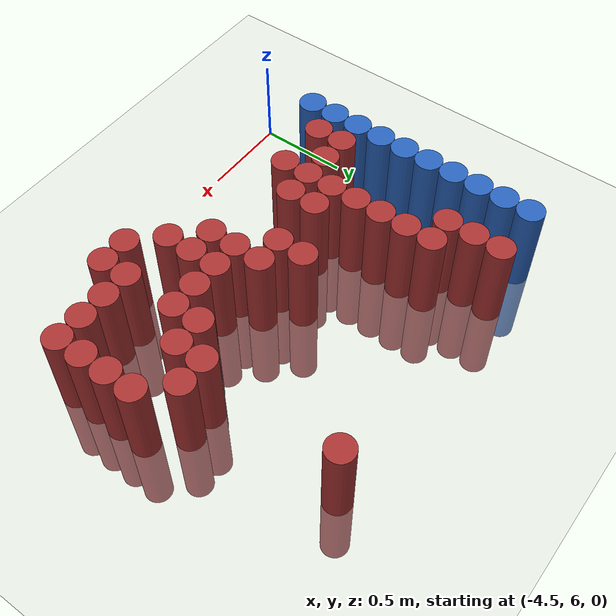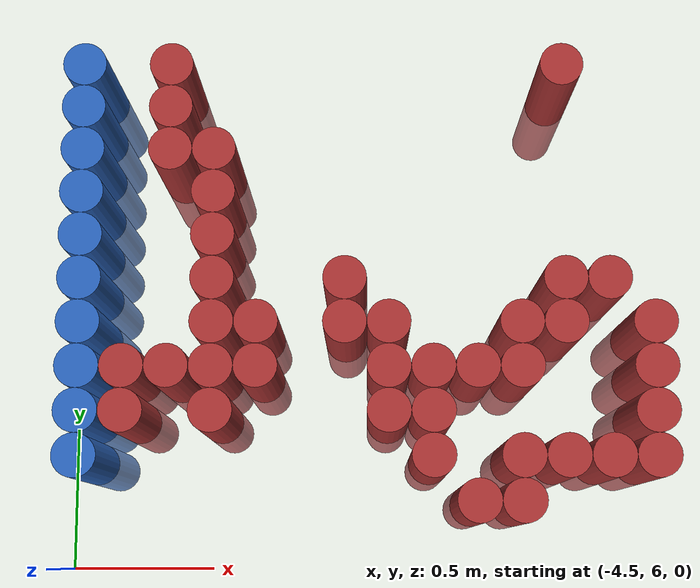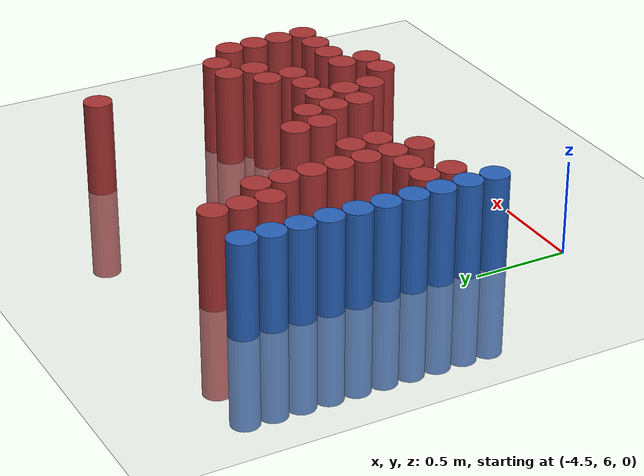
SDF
<sdf version="1.6">
 <world name="default">
  <model name="ground_plane">
   <static>1</static>
   <link name="link">
    <collision name="collision">
     <geometry><plane><normal>0 0 1</normal><size>100 100</size></plane></geometry>
     <surface><friction><ode><mu>100</mu><mu2>50</mu2></ode></friction></surface>
    </collision>
    <visual name="visual">
     <cast_shadows>0</cast_shadows>
     <geometry><plane><normal>0 0 1</normal><size>100 100</size></plane></geometry>
     <material>
      <script><uri>file://media/materials/scripts/gazebo.material</uri><name>Gazebo/Grey</name></script>
     </material>
    </visual>
   </link>
  </model>
  <model name="unit_cylinder_104">
   <static>1</static>
   <pose>-4.425000 6.375000 0.000000 0.000000 0.000000 0.000000</pose>
   <link name="link">
    <inertial>
     <mass>1</mass>
     <inertia><ixx>0.145833</ixx><ixy>0</ixy><ixz>0</ixz><iyy>0.145833</iyy><iyz>0</iyz><izz>0.125</izz></inertia>
    </inertial>
    <collision name="collision">
     <geometry><cylinder><radius>0.075000</radius><length>1</length></cylinder></geometry>
    </collision>
    <visual name="visual">
     <geometry><cylinder><radius>0.075000</radius><length>1</length></cylinder></geometry>
     <material>
      <ambient>0.152000 0.379000 0.720000 1</ambient>
      <diffuse>0.152000 0.379000 0.720000 1</diffuse>
     </material>
     <material>
      <script><name>Gazebo/Grey</name><uri>file://media/materials/scripts/gazebo.material</uri></script>
     </material>
    </visual>
   </link>
  </model>
  <model name="unit_cylinder_105">
   <static>1</static>
   <pose>-4.425000 6.525000 0.000000 0.000000 0.000000 0.000000</pose>
   <link name="link">
    <inertial>
     <mass>1</mass>
     <inertia><ixx>0.145833</ixx><ixy>0</ixy><ixz>0</ixz><iyy>0.145833</iyy><iyz>0</iyz><izz>0.125</izz></inertia>
    </inertial>
    <collision name="collision">
     <geometry><cylinder><radius>0.075000</radius><length>1</length></cylinder></geometry>
    </collision>
    <visual name="visual">
     <geometry><cylinder><radius>0.075000</radius><length>1</length></cylinder></geometry>
     <material>
      <ambient>0.152000 0.379000 0.720000 1</ambient>
      <diffuse>0.152000 0.379000 0.720000 1</diffuse>
     </material>
     <material>
      <script><name>Gazebo/Grey</name><uri>file://media/materials/scripts/gazebo.material</uri></script>
     </material>
    </visual>
   </link>
  </model>
  <model name="unit_cylinder_106">
   <static>1</static>
   <pose>-4.425000 6.675000 0.000000 0.000000 0.000000 0.000000</pose>
   <link name="link">
    <inertial>
     <mass>1</mass>
     <inertia><ixx>0.145833</ixx><ixy>0</ixy><ixz>0</ixz><iyy>0.145833</iyy><iyz>0</iyz><izz>0.125</izz></inertia>
    </inertial>
    <collision name="collision">
     <geometry><cylinder><radius>0.075000</radius><length>1</length></cylinder></geometry>
    </collision>
    <visual name="visual">
     <geometry><cylinder><radius>0.075000</radius><length>1</length></cylinder></geometry>
     <material>
      <ambient>0.152000 0.379000 0.720000 1</ambient>
      <diffuse>0.152000 0.379000 0.720000 1</diffuse>
     </material>
     <material>
      <script><name>Gazebo/Grey</name><uri>file://media/materials/scripts/gazebo.material</uri></script>
     </material>
    </visual>
   </link>
  </model>
  <model name="unit_cylinder_107">
   <static>1</static>
   <pose>-4.425000 6.825000 0.000000 0.000000 0.000000 0.000000</pose>
   <link name="link">
    <inertial>
     <mass>1</mass>
     <inertia><ixx>0.145833</ixx><ixy>0</ixy><ixz>0</ixz><iyy>0.145833</iyy><iyz>0</iyz><izz>0.125</izz></inertia>
    </inertial>
    <collision name="collision">
     <geometry><cylinder><radius>0.075000</radius><length>1</length></cylinder></geometry>
    </collision>
    <visual name="visual">
     <geometry><cylinder><radius>0.075000</radius><length>1</length></cylinder></geometry>
     <material>
      <ambient>0.152000 0.379000 0.720000 1</ambient>
      <diffuse>0.152000 0.379000 0.720000 1</diffuse>
     </material>
     <material>
      <script><name>Gazebo/Grey</name><uri>file://media/materials/scripts/gazebo.material</uri></script>
     </material>
    </visual>
   </link>
  </model>
  <model name="unit_cylinder_108">
   <static>1</static>
   <pose>-4.425000 6.975000 0.000000 0.000000 0.000000 0.000000</pose>
   <link name="link">
    <inertial>
     <mass>1</mass>
     <inertia><ixx>0.145833</ixx><ixy>0</ixy><ixz>0</ixz><iyy>0.145833</iyy><iyz>0</iyz><izz>0.125</izz></inertia>
    </inertial>
    <collision name="collision">
     <geometry><cylinder><radius>0.075000</radius><length>1</length></cylinder></geometry>
    </collision>
    <visual name="visual">
     <geometry><cylinder><radius>0.075000</radius><length>1</length></cylinder></geometry>
     <material>
      <ambient>0.152000 0.379000 0.720000 1</ambient>
      <diffuse>0.152000 0.379000 0.720000 1</diffuse>
     </material>
     <material>
      <script><name>Gazebo/Grey</name><uri>file://media/materials/scripts/gazebo.material</uri></script>
     </material>
    </visual>
   </link>
  </model>
  <model name="unit_cylinder_109">
   <static>1</static>
   <pose>-4.425000 7.125000 0.000000 0.000000 0.000000 0.000000</pose>
   <link name="link">
    <inertial>
     <mass>1</mass>
     <inertia><ixx>0.145833</ixx><ixy>0</ixy><ixz>0</ixz><iyy>0.145833</iyy><iyz>0</iyz><izz>0.125</izz></inertia>
    </inertial>
    <collision name="collision">
     <geometry><cylinder><radius>0.075000</radius><length>1</length></cylinder></geometry>
    </collision>
    <visual name="visual">
     <geometry><cylinder><radius>0.075000</radius><length>1</length></cylinder></geometry>
     <material>
      <ambient>0.152000 0.379000 0.720000 1</ambient>
      <diffuse>0.152000 0.379000 0.720000 1</diffuse>
     </material>
     <material>
      <script><name>Gazebo/Grey</name><uri>file://media/materials/scripts/gazebo.material</uri></script>
     </material>
    </visual>
   </link>
  </model>
  <model name="unit_cylinder_110">
   <static>1</static>
   <pose>-4.425000 7.275000 0.000000 0.000000 0.000000 0.000000</pose>
   <link name="link">
    <inertial>
     <mass>1</mass>
     <inertia><ixx>0.145833</ixx><ixy>0</ixy><ixz>0</ixz><iyy>0.145833</iyy><iyz>0</iyz><izz>0.125</izz></inertia>
    </inertial>
    <collision name="collision">
     <geometry><cylinder><radius>0.075000</radius><length>1</length></cylinder></geometry>
    </collision>
    <visual name="visual">
     <geometry><cylinder><radius>0.075000</radius><length>1</length></cylinder></geometry>
     <material>
      <ambient>0.152000 0.379000 0.720000 1</ambient>
      <diffuse>0.152000 0.379000 0.720000 1</diffuse>
     </material>
     <material>
      <script><name>Gazebo/Grey</name><uri>file://media/materials/scripts/gazebo.material</uri></script>
     </material>
    </visual>
   </link>
  </model>
  <model name="unit_cylinder_111">
   <static>1</static>
   <pose>-4.425000 7.425000 0.000000 0.000000 0.000000 0.000000</pose>
   <link name="link">
    <inertial>
     <mass>1</mass>
     <inertia><ixx>0.145833</ixx><ixy>0</ixy><ixz>0</ixz><iyy>0.145833</iyy><iyz>0</iyz><izz>0.125</izz></inertia>
    </inertial>
    <collision name="collision">
     <geometry><cylinder><radius>0.075000</radius><length>1</length></cylinder></geometry>
    </collision>
    <visual name="visual">
     <geometry><cylinder><radius>0.075000</radius><length>1</length></cylinder></geometry>
     <material>
      <ambient>0.152000 0.379000 0.720000 1</ambient>
      <diffuse>0.152000 0.379000 0.720000 1</diffuse>
     </material>
     <material>
      <script><name>Gazebo/Grey</name><uri>file://media/materials/scripts/gazebo.material</uri></script>
     </material>
    </visual>
   </link>
  </model>
  <model name="unit_cylinder_112">
   <static>1</static>
   <pose>-4.425000 7.575000 0.000000 0.000000 0.000000 0.000000</pose>
   <link name="link">
    <inertial>
     <mass>1</mass>
     <inertia><ixx>0.145833</ixx><ixy>0</ixy><ixz>0</ixz><iyy>0.145833</iyy><iyz>0</iyz><izz>0.125</izz></inertia>
    </inertial>
    <collision name="collision">
     <geometry><cylinder><radius>0.075000</radius><length>1</length></cylinder></geometry>
    </collision>
    <visual name="visual">
     <geometry><cylinder><radius>0.075000</radius><length>1</length></cylinder></geometry>
     <material>
      <ambient>0.152000 0.379000 0.720000 1</ambient>
      <diffuse>0.152000 0.379000 0.720000 1</diffuse>
     </material>
     <material>
      <script><name>Gazebo/Grey</name><uri>file://media/materials/scripts/gazebo.material</uri></script>
     </material>
    </visual>
   </link>
  </model>
  <model name="unit_cylinder_113">
   <static>1</static>
   <pose>-4.425000 7.725000 0.000000 0.000000 0.000000 0.000000</pose>
   <link name="link">
    <inertial>
     <mass>1</mass>
     <inertia><ixx>0.145833</ixx><ixy>0</ixy><ixz>0</ixz><iyy>0.145833</iyy><iyz>0</iyz><izz>0.125</izz></inertia>
    </inertial>
    <collision name="collision">
     <geometry><cylinder><radius>0.075000</radius><length>1</length></cylinder></geometry>
    </collision>
    <visual name="visual">
     <geometry><cylinder><radius>0.075000</radius><length>1</length></cylinder></geometry>
     <material>
      <ambient>0.152000 0.379000 0.720000 1</ambient>
      <diffuse>0.152000 0.379000 0.720000 1</diffuse>
     </material>
     <material>
      <script><name>Gazebo/Grey</name><uri>file://media/materials/scripts/gazebo.material</uri></script>
     </material>
    </visual>
   </link>
  </model>
  <model name="unit_cylinder_130">
   <static>1</static>
   <pose>-4.275000 6.525000 0.000000 0.000000 0.000000 0.000000</pose>
   <link name="link">
    <inertial>
     <mass>1</mass>
     <inertia><ixx>0.145833</ixx><ixy>0</ixy><ixz>0</ixz><iyy>0.145833</iyy><iyz>0</iyz><izz>0.125</izz></inertia>
    </inertial>
    <collision name="collision">
     <geometry><cylinder><radius>0.075000</radius><length>1</length></cylinder></geometry>
    </collision>
    <visual name="visual">
     <geometry><cylinder><radius>0.075000</radius><length>1</length></cylinder></geometry>
     <material>
      <ambient>0.648000 0.192000 0.192000 1</ambient>
      <diffuse>0.648000 0.192000 0.192000 1</diffuse>
     </material>
     <material>
      <script><name>Gazebo/Grey</name><uri>file://media/materials/scripts/gazebo.material</uri></script>
     </material>
    </visual>
   </link>
  </model>
  <model name="unit_cylinder_131">
   <static>1</static>
   <pose>-4.275000 6.675000 0.000000 0.000000 0.000000 0.000000</pose>
   <link name="link">
    <inertial>
     <mass>1</mass>
     <inertia><ixx>0.145833</ixx><ixy>0</ixy><ixz>0</ixz><iyy>0.145833</iyy><iyz>0</iyz><izz>0.125</izz></inertia>
    </inertial>
    <collision name="collision">
     <geometry><cylinder><radius>0.075000</radius><length>1</length></cylinder></geometry>
    </collision>
    <visual name="visual">
     <geometry><cylinder><radius>0.075000</radius><length>1</length></cylinder></geometry>
     <material>
      <ambient>0.648000 0.192000 0.192000 1</ambient>
      <diffuse>0.648000 0.192000 0.192000 1</diffuse>
     </material>
     <material>
      <script><name>Gazebo/Grey</name><uri>file://media/materials/scripts/gazebo.material</uri></script>
     </material>
    </visual>
   </link>
  </model>
  <model name="unit_cylinder_139">
   <static>1</static>
   <pose>-4.125000 6.675000 0.000000 0.000000 0.000000 0.000000</pose>
   <link name="link">
    <inertial>
     <mass>1</mass>
     <inertia><ixx>0.145833</ixx><ixy>0</ixy><ixz>0</ixz><iyy>0.145833</iyy><iyz>0</iyz><izz>0.125</izz></inertia>
    </inertial>
    <collision name="collision">
     <geometry><cylinder><radius>0.075000</radius><length>1</length></cylinder></geometry>
    </collision>
    <visual name="visual">
     <geometry><cylinder><radius>0.075000</radius><length>1</length></cylinder></geometry>
     <material>
      <ambient>0.648000 0.192000 0.192000 1</ambient>
      <diffuse>0.648000 0.192000 0.192000 1</diffuse>
     </material>
     <material>
      <script><name>Gazebo/Grey</name><uri>file://media/materials/scripts/gazebo.material</uri></script>
     </material>
    </visual>
   </link>
  </model>
  <model name="unit_cylinder_140">
   <static>1</static>
   <pose>-4.125000 7.425000 0.000000 0.000000 0.000000 0.000000</pose>
   <link name="link">
    <inertial>
     <mass>1</mass>
     <inertia><ixx>0.145833</ixx><ixy>0</ixy><ixz>0</ixz><iyy>0.145833</iyy><iyz>0</iyz><izz>0.125</izz></inertia>
    </inertial>
    <collision name="collision">
     <geometry><cylinder><radius>0.075000</radius><length>1</length></cylinder></geometry>
    </collision>
    <visual name="visual">
     <geometry><cylinder><radius>0.075000</radius><length>1</length></cylinder></geometry>
     <material>
      <ambient>0.648000 0.192000 0.192000 1</ambient>
      <diffuse>0.648000 0.192000 0.192000 1</diffuse>
     </material>
     <material>
      <script><name>Gazebo/Grey</name><uri>file://media/materials/scripts/gazebo.material</uri></script>
     </material>
    </visual>
   </link>
  </model>
  <model name="unit_cylinder_141">
   <static>1</static>
   <pose>-4.125000 7.575000 0.000000 0.000000 0.000000 0.000000</pose>
   <link name="link">
    <inertial>
     <mass>1</mass>
     <inertia><ixx>0.145833</ixx><ixy>0</ixy><ixz>0</ixz><iyy>0.145833</iyy><iyz>0</iyz><izz>0.125</izz></inertia>
    </inertial>
    <collision name="collision">
     <geometry><cylinder><radius>0.075000</radius><length>1</length></cylinder></geometry>
    </collision>
    <visual name="visual">
     <geometry><cylinder><radius>0.075000</radius><length>1</length></cylinder></geometry>
     <material>
      <ambient>0.648000 0.192000 0.192000 1</ambient>
      <diffuse>0.648000 0.192000 0.192000 1</diffuse>
     </material>
     <material>
      <script><name>Gazebo/Grey</name><uri>file://media/materials/scripts/gazebo.material</uri></script>
     </material>
    </visual>
   </link>
  </model>
  <model name="unit_cylinder_142">
   <static>1</static>
   <pose>-4.125000 7.725000 0.000000 0.000000 0.000000 0.000000</pose>
   <link name="link">
    <inertial>
     <mass>1</mass>
     <inertia><ixx>0.145833</ixx><ixy>0</ixy><ixz>0</ixz><iyy>0.145833</iyy><iyz>0</iyz><izz>0.125</izz></inertia>
    </inertial>
    <collision name="collision">
     <geometry><cylinder><radius>0.075000</radius><length>1</length></cylinder></geometry>
    </collision>
    <visual name="visual">
     <geometry><cylinder><radius>0.075000</radius><length>1</length></cylinder></geometry>
     <material>
      <ambient>0.648000 0.192000 0.192000 1</ambient>
      <diffuse>0.648000 0.192000 0.192000 1</diffuse>
     </material>
     <material>
      <script><name>Gazebo/Grey</name><uri>file://media/materials/scripts/gazebo.material</uri></script>
     </material>
    </visual>
   </link>
  </model>
  <model name="unit_cylinder_151">
   <static>1</static>
   <pose>-3.975000 6.525000 0.000000 0.000000 0.000000 0.000000</pose>
   <link name="link">
    <inertial>
     <mass>1</mass>
     <inertia><ixx>0.145833</ixx><ixy>0</ixy><ixz>0</ixz><iyy>0.145833</iyy><iyz>0</iyz><izz>0.125</izz></inertia>
    </inertial>
    <collision name="collision">
     <geometry><cylinder><radius>0.075000</radius><length>1</length></cylinder></geometry>
    </collision>
    <visual name="visual">
     <geometry><cylinder><radius>0.075000</radius><length>1</length></cylinder></geometry>
     <material>
      <ambient>0.648000 0.192000 0.192000 1</ambient>
      <diffuse>0.648000 0.192000 0.192000 1</diffuse>
     </material>
     <material>
      <script><name>Gazebo/Grey</name><uri>file://media/materials/scripts/gazebo.material</uri></script>
     </material>
    </visual>
   </link>
  </model>
  <model name="unit_cylinder_152">
   <static>1</static>
   <pose>-3.975000 6.675000 0.000000 0.000000 0.000000 0.000000</pose>
   <link name="link">
    <inertial>
     <mass>1</mass>
     <inertia><ixx>0.145833</ixx><ixy>0</ixy><ixz>0</ixz><iyy>0.145833</iyy><iyz>0</iyz><izz>0.125</izz></inertia>
    </inertial>
    <collision name="collision">
     <geometry><cylinder><radius>0.075000</radius><length>1</length></cylinder></geometry>
    </collision>
    <visual name="visual">
     <geometry><cylinder><radius>0.075000</radius><length>1</length></cylinder></geometry>
     <material>
      <ambient>0.648000 0.192000 0.192000 1</ambient>
      <diffuse>0.648000 0.192000 0.192000 1</diffuse>
     </material>
     <material>
      <script><name>Gazebo/Grey</name><uri>file://media/materials/scripts/gazebo.material</uri></script>
     </material>
    </visual>
   </link>
  </model>
  <model name="unit_cylinder_153">
   <static>1</static>
   <pose>-3.975000 6.825000 0.000000 0.000000 0.000000 0.000000</pose>
   <link name="link">
    <inertial>
     <mass>1</mass>
     <inertia><ixx>0.145833</ixx><ixy>0</ixy><ixz>0</ixz><iyy>0.145833</iyy><iyz>0</iyz><izz>0.125</izz></inertia>
    </inertial>
    <collision name="collision">
     <geometry><cylinder><radius>0.075000</radius><length>1</length></cylinder></geometry>
    </collision>
    <visual name="visual">
     <geometry><cylinder><radius>0.075000</radius><length>1</length></cylinder></geometry>
     <material>
      <ambient>0.648000 0.192000 0.192000 1</ambient>
      <diffuse>0.648000 0.192000 0.192000 1</diffuse>
     </material>
     <material>
      <script><name>Gazebo/Grey</name><uri>file://media/materials/scripts/gazebo.material</uri></script>
     </material>
    </visual>
   </link>
  </model>
  <model name="unit_cylinder_154">
   <static>1</static>
   <pose>-3.975000 6.975000 0.000000 0.000000 0.000000 0.000000</pose>
   <link name="link">
    <inertial>
     <mass>1</mass>
     <inertia><ixx>0.145833</ixx><ixy>0</ixy><ixz>0</ixz><iyy>0.145833</iyy><iyz>0</iyz><izz>0.125</izz></inertia>
    </inertial>
    <collision name="collision">
     <geometry><cylinder><radius>0.075000</radius><length>1</length></cylinder></geometry>
    </collision>
    <visual name="visual">
     <geometry><cylinder><radius>0.075000</radius><length>1</length></cylinder></geometry>
     <material>
      <ambient>0.648000 0.192000 0.192000 1</ambient>
      <diffuse>0.648000 0.192000 0.192000 1</diffuse>
     </material>
     <material>
      <script><name>Gazebo/Grey</name><uri>file://media/materials/scripts/gazebo.material</uri></script>
     </material>
    </visual>
   </link>
  </model>
  <model name="unit_cylinder_155">
   <static>1</static>
   <pose>-3.975000 7.125000 0.000000 0.000000 0.000000 0.000000</pose>
   <link name="link">
    <inertial>
     <mass>1</mass>
     <inertia><ixx>0.145833</ixx><ixy>0</ixy><ixz>0</ixz><iyy>0.145833</iyy><iyz>0</iyz><izz>0.125</izz></inertia>
    </inertial>
    <collision name="collision">
     <geometry><cylinder><radius>0.075000</radius><length>1</length></cylinder></geometry>
    </collision>
    <visual name="visual">
     <geometry><cylinder><radius>0.075000</radius><length>1</length></cylinder></geometry>
     <material>
      <ambient>0.648000 0.192000 0.192000 1</ambient>
      <diffuse>0.648000 0.192000 0.192000 1</diffuse>
     </material>
     <material>
      <script><name>Gazebo/Grey</name><uri>file://media/materials/scripts/gazebo.material</uri></script>
     </material>
    </visual>
   </link>
  </model>
  <model name="unit_cylinder_156">
   <static>1</static>
   <pose>-3.975000 7.275000 0.000000 0.000000 0.000000 0.000000</pose>
   <link name="link">
    <inertial>
     <mass>1</mass>
     <inertia><ixx>0.145833</ixx><ixy>0</ixy><ixz>0</ixz><iyy>0.145833</iyy><iyz>0</iyz><izz>0.125</izz></inertia>
    </inertial>
    <collision name="collision">
     <geometry><cylinder><radius>0.075000</radius><length>1</length></cylinder></geometry>
    </collision>
    <visual name="visual">
     <geometry><cylinder><radius>0.075000</radius><length>1</length></cylinder></geometry>
     <material>
      <ambient>0.648000 0.192000 0.192000 1</ambient>
      <diffuse>0.648000 0.192000 0.192000 1</diffuse>
     </material>
     <material>
      <script><name>Gazebo/Grey</name><uri>file://media/materials/scripts/gazebo.material</uri></script>
     </material>
    </visual>
   </link>
  </model>
  <model name="unit_cylinder_157">
   <static>1</static>
   <pose>-3.975000 7.425000 0.000000 0.000000 0.000000 0.000000</pose>
   <link name="link">
    <inertial>
     <mass>1</mass>
     <inertia><ixx>0.145833</ixx><ixy>0</ixy><ixz>0</ixz><iyy>0.145833</iyy><iyz>0</iyz><izz>0.125</izz></inertia>
    </inertial>
    <collision name="collision">
     <geometry><cylinder><radius>0.075000</radius><length>1</length></cylinder></geometry>
    </collision>
    <visual name="visual">
     <geometry><cylinder><radius>0.075000</radius><length>1</length></cylinder></geometry>
     <material>
      <ambient>0.648000 0.192000 0.192000 1</ambient>
      <diffuse>0.648000 0.192000 0.192000 1</diffuse>
     </material>
     <material>
      <script><name>Gazebo/Grey</name><uri>file://media/materials/scripts/gazebo.material</uri></script>
     </material>
    </visual>
   </link>
  </model>
  <model name="unit_cylinder_166">
   <static>1</static>
   <pose>-3.825000 6.675000 0.000000 0.000000 0.000000 0.000000</pose>
   <link name="link">
    <inertial>
     <mass>1</mass>
     <inertia><ixx>0.145833</ixx><ixy>0</ixy><ixz>0</ixz><iyy>0.145833</iyy><iyz>0</iyz><izz>0.125</izz></inertia>
    </inertial>
    <collision name="collision">
     <geometry><cylinder><radius>0.075000</radius><length>1</length></cylinder></geometry>
    </collision>
    <visual name="visual">
     <geometry><cylinder><radius>0.075000</radius><length>1</length></cylinder></geometry>
     <material>
      <ambient>0.648000 0.192000 0.192000 1</ambient>
      <diffuse>0.648000 0.192000 0.192000 1</diffuse>
     </material>
     <material>
      <script><name>Gazebo/Grey</name><uri>file://media/materials/scripts/gazebo.material</uri></script>
     </material>
    </visual>
   </link>
  </model>
  <model name="unit_cylinder_167">
   <static>1</static>
   <pose>-3.825000 6.825000 0.000000 0.000000 0.000000 0.000000</pose>
   <link name="link">
    <inertial>
     <mass>1</mass>
     <inertia><ixx>0.145833</ixx><ixy>0</ixy><ixz>0</ixz><iyy>0.145833</iyy><iyz>0</iyz><izz>0.125</izz></inertia>
    </inertial>
    <collision name="collision">
     <geometry><cylinder><radius>0.075000</radius><length>1</length></cylinder></geometry>
    </collision>
    <visual name="visual">
     <geometry><cylinder><radius>0.075000</radius><length>1</length></cylinder></geometry>
     <material>
      <ambient>0.648000 0.192000 0.192000 1</ambient>
      <diffuse>0.648000 0.192000 0.192000 1</diffuse>
     </material>
     <material>
      <script><name>Gazebo/Grey</name><uri>file://media/materials/scripts/gazebo.material</uri></script>
     </material>
    </visual>
   </link>
  </model>
  <model name="unit_cylinder_177">
   <static>1</static>
   <pose>-3.525000 6.825000 0.000000 0.000000 0.000000 0.000000</pose>
   <link name="link">
    <inertial>
     <mass>1</mass>
     <inertia><ixx>0.145833</ixx><ixy>0</ixy><ixz>0</ixz><iyy>0.145833</iyy><iyz>0</iyz><izz>0.125</izz></inertia>
    </inertial>
    <collision name="collision">
     <geometry><cylinder><radius>0.075000</radius><length>1</length></cylinder></geometry>
    </collision>
    <visual name="visual">
     <geometry><cylinder><radius>0.075000</radius><length>1</length></cylinder></geometry>
     <material>
      <ambient>0.648000 0.192000 0.192000 1</ambient>
      <diffuse>0.648000 0.192000 0.192000 1</diffuse>
     </material>
     <material>
      <script><name>Gazebo/Grey</name><uri>file://media/materials/scripts/gazebo.material</uri></script>
     </material>
    </visual>
   </link>
  </model>
  <model name="unit_cylinder_178">
   <static>1</static>
   <pose>-3.525000 6.975000 0.000000 0.000000 0.000000 0.000000</pose>
   <link name="link">
    <inertial>
     <mass>1</mass>
     <inertia><ixx>0.145833</ixx><ixy>0</ixy><ixz>0</ixz><iyy>0.145833</iyy><iyz>0</iyz><izz>0.125</izz></inertia>
    </inertial>
    <collision name="collision">
     <geometry><cylinder><radius>0.075000</radius><length>1</length></cylinder></geometry>
    </collision>
    <visual name="visual">
     <geometry><cylinder><radius>0.075000</radius><length>1</length></cylinder></geometry>
     <material>
      <ambient>0.648000 0.192000 0.192000 1</ambient>
      <diffuse>0.648000 0.192000 0.192000 1</diffuse>
     </material>
     <material>
      <script><name>Gazebo/Grey</name><uri>file://media/materials/scripts/gazebo.material</uri></script>
     </material>
    </visual>
   </link>
  </model>
  <model name="unit_cylinder_183">
   <static>1</static>
   <pose>-3.375000 6.525000 0.000000 0.000000 0.000000 0.000000</pose>
   <link name="link">
    <inertial>
     <mass>1</mass>
     <inertia><ixx>0.145833</ixx><ixy>0</ixy><ixz>0</ixz><iyy>0.145833</iyy><iyz>0</iyz><izz>0.125</izz></inertia>
    </inertial>
    <collision name="collision">
     <geometry><cylinder><radius>0.075000</radius><length>1</length></cylinder></geometry>
    </collision>
    <visual name="visual">
     <geometry><cylinder><radius>0.075000</radius><length>1</length></cylinder></geometry>
     <material>
      <ambient>0.648000 0.192000 0.192000 1</ambient>
      <diffuse>0.648000 0.192000 0.192000 1</diffuse>
     </material>
     <material>
      <script><name>Gazebo/Grey</name><uri>file://media/materials/scripts/gazebo.material</uri></script>
     </material>
    </visual>
   </link>
  </model>
  <model name="unit_cylinder_184">
   <static>1</static>
   <pose>-3.375000 6.675000 0.000000 0.000000 0.000000 0.000000</pose>
   <link name="link">
    <inertial>
     <mass>1</mass>
     <inertia><ixx>0.145833</ixx><ixy>0</ixy><ixz>0</ixz><iyy>0.145833</iyy><iyz>0</iyz><izz>0.125</izz></inertia>
    </inertial>
    <collision name="collision">
     <geometry><cylinder><radius>0.075000</radius><length>1</length></cylinder></geometry>
    </collision>
    <visual name="visual">
     <geometry><cylinder><radius>0.075000</radius><length>1</length></cylinder></geometry>
     <material>
      <ambient>0.648000 0.192000 0.192000 1</ambient>
      <diffuse>0.648000 0.192000 0.192000 1</diffuse>
     </material>
     <material>
      <script><name>Gazebo/Grey</name><uri>file://media/materials/scripts/gazebo.material</uri></script>
     </material>
    </visual>
   </link>
  </model>
  <model name="unit_cylinder_185">
   <static>1</static>
   <pose>-3.375000 6.825000 0.000000 0.000000 0.000000 0.000000</pose>
   <link name="link">
    <inertial>
     <mass>1</mass>
     <inertia><ixx>0.145833</ixx><ixy>0</ixy><ixz>0</ixz><iyy>0.145833</iyy><iyz>0</iyz><izz>0.125</izz></inertia>
    </inertial>
    <collision name="collision">
     <geometry><cylinder><radius>0.075000</radius><length>1</length></cylinder></geometry>
    </collision>
    <visual name="visual">
     <geometry><cylinder><radius>0.075000</radius><length>1</length></cylinder></geometry>
     <material>
      <ambient>0.648000 0.192000 0.192000 1</ambient>
      <diffuse>0.648000 0.192000 0.192000 1</diffuse>
     </material>
     <material>
      <script><name>Gazebo/Grey</name><uri>file://media/materials/scripts/gazebo.material</uri></script>
     </material>
    </visual>
   </link>
  </model>
  <model name="unit_cylinder_190">
   <static>1</static>
   <pose>-3.225000 6.375000 0.000000 0.000000 0.000000 0.000000</pose>
   <link name="link">
    <inertial>
     <mass>1</mass>
     <inertia><ixx>0.145833</ixx><ixy>0</ixy><ixz>0</ixz><iyy>0.145833</iyy><iyz>0</iyz><izz>0.125</izz></inertia>
    </inertial>
    <collision name="collision">
     <geometry><cylinder><radius>0.075000</radius><length>1</length></cylinder></geometry>
    </collision>
    <visual name="visual">
     <geometry><cylinder><radius>0.075000</radius><length>1</length></cylinder></geometry>
     <material>
      <ambient>0.648000 0.192000 0.192000 1</ambient>
      <diffuse>0.648000 0.192000 0.192000 1</diffuse>
     </material>
     <material>
      <script><name>Gazebo/Grey</name><uri>file://media/materials/scripts/gazebo.material</uri></script>
     </material>
    </visual>
   </link>
  </model>
  <model name="unit_cylinder_191">
   <static>1</static>
   <pose>-3.225000 6.525000 0.000000 0.000000 0.000000 0.000000</pose>
   <link name="link">
    <inertial>
     <mass>1</mass>
     <inertia><ixx>0.145833</ixx><ixy>0</ixy><ixz>0</ixz><iyy>0.145833</iyy><iyz>0</iyz><izz>0.125</izz></inertia>
    </inertial>
    <collision name="collision">
     <geometry><cylinder><radius>0.075000</radius><length>1</length></cylinder></geometry>
    </collision>
    <visual name="visual">
     <geometry><cylinder><radius>0.075000</radius><length>1</length></cylinder></geometry>
     <material>
      <ambient>0.648000 0.192000 0.192000 1</ambient>
      <diffuse>0.648000 0.192000 0.192000 1</diffuse>
     </material>
     <material>
      <script><name>Gazebo/Grey</name><uri>file://media/materials/scripts/gazebo.material</uri></script>
     </material>
    </visual>
   </link>
  </model>
  <model name="unit_cylinder_192">
   <static>1</static>
   <pose>-3.225000 6.675000 0.000000 0.000000 0.000000 0.000000</pose>
   <link name="link">
    <inertial>
     <mass>1</mass>
     <inertia><ixx>0.145833</ixx><ixy>0</ixy><ixz>0</ixz><iyy>0.145833</iyy><iyz>0</iyz><izz>0.125</izz></inertia>
    </inertial>
    <collision name="collision">
     <geometry><cylinder><radius>0.075000</radius><length>1</length></cylinder></geometry>
    </collision>
    <visual name="visual">
     <geometry><cylinder><radius>0.075000</radius><length>1</length></cylinder></geometry>
     <material>
      <ambient>0.648000 0.192000 0.192000 1</ambient>
      <diffuse>0.648000 0.192000 0.192000 1</diffuse>
     </material>
     <material>
      <script><name>Gazebo/Grey</name><uri>file://media/materials/scripts/gazebo.material</uri></script>
     </material>
    </visual>
   </link>
  </model>
  <model name="unit_cylinder_195">
   <static>1</static>
   <pose>-3.075000 6.225000 0.000000 0.000000 0.000000 0.000000</pose>
   <link name="link">
    <inertial>
     <mass>1</mass>
     <inertia><ixx>0.145833</ixx><ixy>0</ixy><ixz>0</ixz><iyy>0.145833</iyy><iyz>0</iyz><izz>0.125</izz></inertia>
    </inertial>
    <collision name="collision">
     <geometry><cylinder><radius>0.075000</radius><length>1</length></cylinder></geometry>
    </collision>
    <visual name="visual">
     <geometry><cylinder><radius>0.075000</radius><length>1</length></cylinder></geometry>
     <material>
      <ambient>0.648000 0.192000 0.192000 1</ambient>
      <diffuse>0.648000 0.192000 0.192000 1</diffuse>
     </material>
     <material>
      <script><name>Gazebo/Grey</name><uri>file://media/materials/scripts/gazebo.material</uri></script>
     </material>
    </visual>
   </link>
  </model>
  <model name="unit_cylinder_196">
   <static>1</static>
   <pose>-3.075000 6.675000 0.000000 0.000000 0.000000 0.000000</pose>
   <link name="link">
    <inertial>
     <mass>1</mass>
     <inertia><ixx>0.145833</ixx><ixy>0</ixy><ixz>0</ixz><iyy>0.145833</iyy><iyz>0</iyz><izz>0.125</izz></inertia>
    </inertial>
    <collision name="collision">
     <geometry><cylinder><radius>0.075000</radius><length>1</length></cylinder></geometry>
    </collision>
    <visual name="visual">
     <geometry><cylinder><radius>0.075000</radius><length>1</length></cylinder></geometry>
     <material>
      <ambient>0.648000 0.192000 0.192000 1</ambient>
      <diffuse>0.648000 0.192000 0.192000 1</diffuse>
     </material>
     <material>
      <script><name>Gazebo/Grey</name><uri>file://media/materials/scripts/gazebo.material</uri></script>
     </material>
    </visual>
   </link>
  </model>
  <model name="unit_cylinder_199">
   <static>1</static>
   <pose>-2.925000 6.225000 0.000000 0.000000 0.000000 0.000000</pose>
   <link name="link">
    <inertial>
     <mass>1</mass>
     <inertia><ixx>0.145833</ixx><ixy>0</ixy><ixz>0</ixz><iyy>0.145833</iyy><iyz>0</iyz><izz>0.125</izz></inertia>
    </inertial>
    <collision name="collision">
     <geometry><cylinder><radius>0.075000</radius><length>1</length></cylinder></geometry>
    </collision>
    <visual name="visual">
     <geometry><cylinder><radius>0.075000</radius><length>1</length></cylinder></geometry>
     <material>
      <ambient>0.648000 0.192000 0.192000 1</ambient>
      <diffuse>0.648000 0.192000 0.192000 1</diffuse>
     </material>
     <material>
      <script><name>Gazebo/Grey</name><uri>file://media/materials/scripts/gazebo.material</uri></script>
     </material>
    </visual>
   </link>
  </model>
  <model name="unit_cylinder_200">
   <static>1</static>
   <pose>-2.925000 6.375000 0.000000 0.000000 0.000000 0.000000</pose>
   <link name="link">
    <inertial>
     <mass>1</mass>
     <inertia><ixx>0.145833</ixx><ixy>0</ixy><ixz>0</ixz><iyy>0.145833</iyy><iyz>0</iyz><izz>0.125</izz></inertia>
    </inertial>
    <collision name="collision">
     <geometry><cylinder><radius>0.075000</radius><length>1</length></cylinder></geometry>
    </collision>
    <visual name="visual">
     <geometry><cylinder><radius>0.075000</radius><length>1</length></cylinder></geometry>
     <material>
      <ambient>0.648000 0.192000 0.192000 1</ambient>
      <diffuse>0.648000 0.192000 0.192000 1</diffuse>
     </material>
     <material>
      <script><name>Gazebo/Grey</name><uri>file://media/materials/scripts/gazebo.material</uri></script>
     </material>
    </visual>
   </link>
  </model>
  <model name="unit_cylinder_201">
   <static>1</static>
   <pose>-2.925000 6.675000 0.000000 0.000000 0.000000 0.000000</pose>
   <link name="link">
    <inertial>
     <mass>1</mass>
     <inertia><ixx>0.145833</ixx><ixy>0</ixy><ixz>0</ixz><iyy>0.145833</iyy><iyz>0</iyz><izz>0.125</izz></inertia>
    </inertial>
    <collision name="collision">
     <geometry><cylinder><radius>0.075000</radius><length>1</length></cylinder></geometry>
    </collision>
    <visual name="visual">
     <geometry><cylinder><radius>0.075000</radius><length>1</length></cylinder></geometry>
     <material>
      <ambient>0.648000 0.192000 0.192000 1</ambient>
      <diffuse>0.648000 0.192000 0.192000 1</diffuse>
     </material>
     <material>
      <script><name>Gazebo/Grey</name><uri>file://media/materials/scripts/gazebo.material</uri></script>
     </material>
    </visual>
   </link>
  </model>
  <model name="unit_cylinder_202">
   <static>1</static>
   <pose>-2.925000 6.825000 0.000000 0.000000 0.000000 0.000000</pose>
   <link name="link">
    <inertial>
     <mass>1</mass>
     <inertia><ixx>0.145833</ixx><ixy>0</ixy><ixz>0</ixz><iyy>0.145833</iyy><iyz>0</iyz><izz>0.125</izz></inertia>
    </inertial>
    <collision name="collision">
     <geometry><cylinder><radius>0.075000</radius><length>1</length></cylinder></geometry>
    </collision>
    <visual name="visual">
     <geometry><cylinder><radius>0.075000</radius><length>1</length></cylinder></geometry>
     <material>
      <ambient>0.648000 0.192000 0.192000 1</ambient>
      <diffuse>0.648000 0.192000 0.192000 1</diffuse>
     </material>
     <material>
      <script><name>Gazebo/Grey</name><uri>file://media/materials/scripts/gazebo.material</uri></script>
     </material>
    </visual>
   </link>
  </model>
  <model name="unit_cylinder_207">
   <static>1</static>
   <pose>-2.775000 6.375000 0.000000 0.000000 0.000000 0.000000</pose>
   <link name="link">
    <inertial>
     <mass>1</mass>
     <inertia><ixx>0.145833</ixx><ixy>0</ixy><ixz>0</ixz><iyy>0.145833</iyy><iyz>0</iyz><izz>0.125</izz></inertia>
    </inertial>
    <collision name="collision">
     <geometry><cylinder><radius>0.075000</radius><length>1</length></cylinder></geometry>
    </collision>
    <visual name="visual">
     <geometry><cylinder><radius>0.075000</radius><length>1</length></cylinder></geometry>
     <material>
      <ambient>0.648000 0.192000 0.192000 1</ambient>
      <diffuse>0.648000 0.192000 0.192000 1</diffuse>
     </material>
     <material>
      <script><name>Gazebo/Grey</name><uri>file://media/materials/scripts/gazebo.material</uri></script>
     </material>
    </visual>
   </link>
  </model>
  <model name="unit_cylinder_208">
   <static>1</static>
   <pose>-2.775000 6.825000 0.000000 0.000000 0.000000 0.000000</pose>
   <link name="link">
    <inertial>
     <mass>1</mass>
     <inertia><ixx>0.145833</ixx><ixy>0</ixy><ixz>0</ixz><iyy>0.145833</iyy><iyz>0</iyz><izz>0.125</izz></inertia>
    </inertial>
    <collision name="collision">
     <geometry><cylinder><radius>0.075000</radius><length>1</length></cylinder></geometry>
    </collision>
    <visual name="visual">
     <geometry><cylinder><radius>0.075000</radius><length>1</length></cylinder></geometry>
     <material>
      <ambient>0.648000 0.192000 0.192000 1</ambient>
      <diffuse>0.648000 0.192000 0.192000 1</diffuse>
     </material>
     <material>
      <script><name>Gazebo/Grey</name><uri>file://media/materials/scripts/gazebo.material</uri></script>
     </material>
    </visual>
   </link>
  </model>
  <model name="unit_cylinder_209">
   <static>1</static>
   <pose>-2.775000 6.975000 0.000000 0.000000 0.000000 0.000000</pose>
   <link name="link">
    <inertial>
     <mass>1</mass>
     <inertia><ixx>0.145833</ixx><ixy>0</ixy><ixz>0</ixz><iyy>0.145833</iyy><iyz>0</iyz><izz>0.125</izz></inertia>
    </inertial>
    <collision name="collision">
     <geometry><cylinder><radius>0.075000</radius><length>1</length></cylinder></geometry>
    </collision>
    <visual name="visual">
     <geometry><cylinder><radius>0.075000</radius><length>1</length></cylinder></geometry>
     <material>
      <ambient>0.648000 0.192000 0.192000 1</ambient>
      <diffuse>0.648000 0.192000 0.192000 1</diffuse>
     </material>
     <material>
      <script><name>Gazebo/Grey</name><uri>file://media/materials/scripts/gazebo.material</uri></script>
     </material>
    </visual>
   </link>
  </model>
  <model name="unit_cylinder_210">
   <static>1</static>
   <pose>-2.775000 7.725000 0.000000 0.000000 0.000000 0.000000</pose>
   <link name="link">
    <inertial>
     <mass>1</mass>
     <inertia><ixx>0.145833</ixx><ixy>0</ixy><ixz>0</ixz><iyy>0.145833</iyy><iyz>0</iyz><izz>0.125</izz></inertia>
    </inertial>
    <collision name="collision">
     <geometry><cylinder><radius>0.075000</radius><length>1</length></cylinder></geometry>
    </collision>
    <visual name="visual">
     <geometry><cylinder><radius>0.075000</radius><length>1</length></cylinder></geometry>
     <material>
      <ambient>0.648000 0.192000 0.192000 1</ambient>
      <diffuse>0.648000 0.192000 0.192000 1</diffuse>
     </material>
     <material>
      <script><name>Gazebo/Grey</name><uri>file://media/materials/scripts/gazebo.material</uri></script>
     </material>
    </visual>
   </link>
  </model>
  <model name="unit_cylinder_215">
   <static>1</static>
   <pose>-2.625000 6.375000 0.000000 0.000000 0.000000 0.000000</pose>
   <link name="link">
    <inertial>
     <mass>1</mass>
     <inertia><ixx>0.145833</ixx><ixy>0</ixy><ixz>0</ixz><iyy>0.145833</iyy><iyz>0</iyz><izz>0.125</izz></inertia>
    </inertial>
    <collision name="collision">
     <geometry><cylinder><radius>0.075000</radius><length>1</length></cylinder></geometry>
    </collision>
    <visual name="visual">
     <geometry><cylinder><radius>0.075000</radius><length>1</length></cylinder></geometry>
     <material>
      <ambient>0.648000 0.192000 0.192000 1</ambient>
      <diffuse>0.648000 0.192000 0.192000 1</diffuse>
     </material>
     <material>
      <script><name>Gazebo/Grey</name><uri>file://media/materials/scripts/gazebo.material</uri></script>
     </material>
    </visual>
   </link>
  </model>
  <model name="unit_cylinder_216">
   <static>1</static>
   <pose>-2.625000 6.975000 0.000000 0.000000 0.000000 0.000000</pose>
   <link name="link">
    <inertial>
     <mass>1</mass>
     <inertia><ixx>0.145833</ixx><ixy>0</ixy><ixz>0</ixz><iyy>0.145833</iyy><iyz>0</iyz><izz>0.125</izz></inertia>
    </inertial>
    <collision name="collision">
     <geometry><cylinder><radius>0.075000</radius><length>1</length></cylinder></geometry>
    </collision>
    <visual name="visual">
     <geometry><cylinder><radius>0.075000</radius><length>1</length></cylinder></geometry>
     <material>
      <ambient>0.648000 0.192000 0.192000 1</ambient>
      <diffuse>0.648000 0.192000 0.192000 1</diffuse>
     </material>
     <material>
      <script><name>Gazebo/Grey</name><uri>file://media/materials/scripts/gazebo.material</uri></script>
     </material>
    </visual>
   </link>
  </model>
  <model name="unit_cylinder_218">
   <static>1</static>
   <pose>-2.475000 6.375000 0.000000 0.000000 0.000000 0.000000</pose>
   <link name="link">
    <inertial>
     <mass>1</mass>
     <inertia><ixx>0.145833</ixx><ixy>0</ixy><ixz>0</ixz><iyy>0.145833</iyy><iyz>0</iyz><izz>0.125</izz></inertia>
    </inertial>
    <collision name="collision">
     <geometry><cylinder><radius>0.075000</radius><length>1</length></cylinder></geometry>
    </collision>
    <visual name="visual">
     <geometry><cylinder><radius>0.075000</radius><length>1</length></cylinder></geometry>
     <material>
      <ambient>0.648000 0.192000 0.192000 1</ambient>
      <diffuse>0.648000 0.192000 0.192000 1</diffuse>
     </material>
     <material>
      <script><name>Gazebo/Grey</name><uri>file://media/materials/scripts/gazebo.material</uri></script>
     </material>
    </visual>
   </link>
  </model>
  <model name="unit_cylinder_219">
   <static>1</static>
   <pose>-2.475000 6.525000 0.000000 0.000000 0.000000 0.000000</pose>
   <link name="link">
    <inertial>
     <mass>1</mass>
     <inertia><ixx>0.145833</ixx><ixy>0</ixy><ixz>0</ixz><iyy>0.145833</iyy><iyz>0</iyz><izz>0.125</izz></inertia>
    </inertial>
    <collision name="collision">
     <geometry><cylinder><radius>0.075000</radius><length>1</length></cylinder></geometry>
    </collision>
    <visual name="visual">
     <geometry><cylinder><radius>0.075000</radius><length>1</length></cylinder></geometry>
     <material>
      <ambient>0.648000 0.192000 0.192000 1</ambient>
      <diffuse>0.648000 0.192000 0.192000 1</diffuse>
     </material>
     <material>
      <script><name>Gazebo/Grey</name><uri>file://media/materials/scripts/gazebo.material</uri></script>
     </material>
    </visual>
   </link>
  </model>
  <model name="unit_cylinder_220">
   <static>1</static>
   <pose>-2.475000 6.675000 0.000000 0.000000 0.000000 0.000000</pose>
   <link name="link">
    <inertial>
     <mass>1</mass>
     <inertia><ixx>0.145833</ixx><ixy>0</ixy><ixz>0</ixz><iyy>0.145833</iyy><iyz>0</iyz><izz>0.125</izz></inertia>
    </inertial>
    <collision name="collision">
     <geometry><cylinder><radius>0.075000</radius><length>1</length></cylinder></geometry>
    </collision>
    <visual name="visual">
     <geometry><cylinder><radius>0.075000</radius><length>1</length></cylinder></geometry>
     <material>
      <ambient>0.648000 0.192000 0.192000 1</ambient>
      <diffuse>0.648000 0.192000 0.192000 1</diffuse>
     </material>
     <material>
      <script><name>Gazebo/Grey</name><uri>file://media/materials/scripts/gazebo.material</uri></script>
     </material>
    </visual>
   </link>
  </model>
  <model name="unit_cylinder_221">
   <static>1</static>
   <pose>-2.475000 6.825000 0.000000 0.000000 0.000000 0.000000</pose>
   <link name="link">
    <inertial>
     <mass>1</mass>
     <inertia><ixx>0.145833</ixx><ixy>0</ixy><ixz>0</ixz><iyy>0.145833</iyy><iyz>0</iyz><izz>0.125</izz></inertia>
    </inertial>
    <collision name="collision">
     <geometry><cylinder><radius>0.075000</radius><length>1</length></cylinder></geometry>
    </collision>
    <visual name="visual">
     <geometry><cylinder><radius>0.075000</radius><length>1</length></cylinder></geometry>
     <material>
      <ambient>0.648000 0.192000 0.192000 1</ambient>
      <diffuse>0.648000 0.192000 0.192000 1</diffuse>
     </material>
     <material>
      <script><name>Gazebo/Grey</name><uri>file://media/materials/scripts/gazebo.material</uri></script>
     </material>
    </visual>
   </link>
  </model>
 </world>
</sdf>
